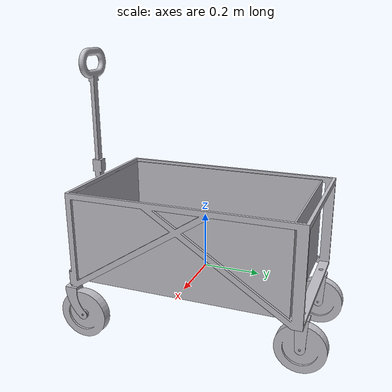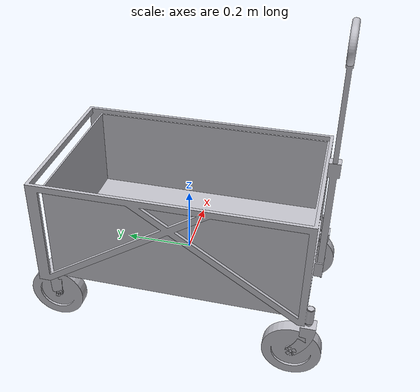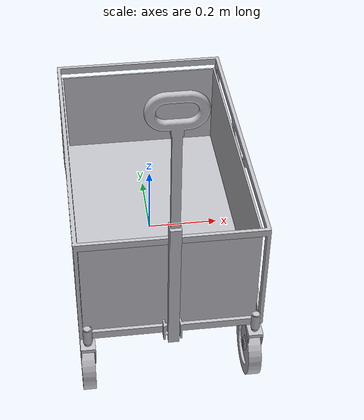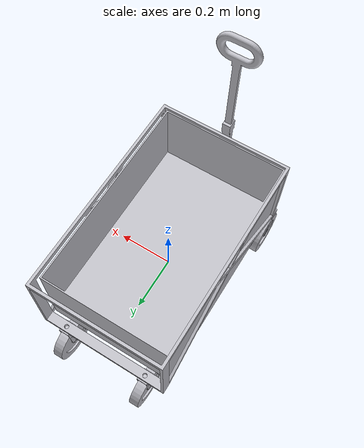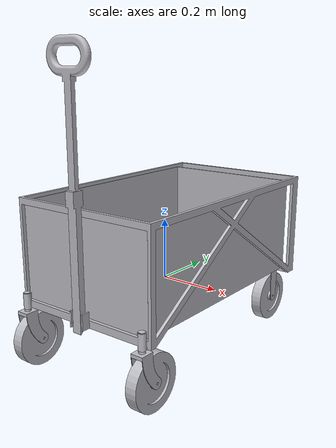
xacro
<?xml version="1.0"?>
<robot name="waterloo_steel" xmlns:xacro="http://www.ros.org/wiki/xacro">

  <!-- Imported elements -->

  <!-- First we import all posible elements defined in the urdf.xacro files. All these elements are defined as macro:xacros -->

  <!-- Import wagon elements -->
  <xacro:include filename="$(find waterloo_steel_description)/urdf/wagon/wagon_V2.urdf.xacro" />

  <xacro:property name="PI"                   value="3.1415926535897931"/>

  <!-- Wheel parameters -->
  <xacro:property name="wheel_radius"         value="0.127" /> <!-- omin-wheel -->
  <!-- Front Left Swivel -->
  <xacro:property name="wheel_offset_left_front_x"       value="0.242" />    <!-- x,y,z in translation from base_link to the center of the wheel -->
  <!-- Front Right Swivel -->
  <xacro:property name="wheel_offset_right_front_x"      value="-0.214" />
  <!-- Rear Left Fixed -->
  <xacro:property name="wheel_offset_left_rear_x"       value="0.197" />
  <!-- Rear Right Fixed -->
  <xacro:property name="wheel_offset_right_rear_x"      value="-0.133" />
  <!-- Front Swivel -->
  <xacro:property name="wheel_offset_front_y"       value="-0.407" />
  <xacro:property name="wheel_offset_front_z"       value="0.02" />
  <!-- Rear Fixed -->
  <xacro:property name="wheel_offset_rear_y"       value="0.396" />
  <xacro:property name="wheel_offset_rear_z"       value="-0.142" />

  <xacro:arg name="prefix"                 default="waterloo_steel_"/>

  <!-- Define wagon -->
  <xacro:macro name="wagon" params="prefix">

    <!-- Here we create the robot elements using the xacro:macros imported at the beggining of this file -->

    <!-- Wagon Base -->
    <xacro:wagon_base_link prefix="$(arg prefix)"/>

    <!-- Front Swivel Left Wheel -->
    <xacro:wagon_swivel_wheel_mount prefix="$(arg prefix)_front_left"
                                    parent="$(arg prefix)_base_link"
                                    child="$(arg prefix)_front_left_wheel"
                                    reflect="true">
        <origin xyz="${wheel_offset_left_front_x} ${wheel_offset_front_y} ${wheel_offset_front_z}" rpy="0 0 0"/>
    </xacro:wagon_swivel_wheel_mount>
    <xacro:wagon_wheel_link prefix="$(arg prefix)_front_left"/>

    <!-- Front Swivel Right Wheel -->
    <xacro:wagon_swivel_wheel_mount prefix="$(arg prefix)_front_right"
                                    parent="$(arg prefix)_base_link"
                                    child="$(arg prefix)_front_right_wheel"
                                    reflect="false">
        <origin xyz="${wheel_offset_right_front_x} ${wheel_offset_front_y} ${wheel_offset_front_z}" rpy="0 0 0"/>
    </xacro:wagon_swivel_wheel_mount>
    <xacro:wagon_wheel_link prefix="$(arg prefix)_front_right"/>

    <!-- Rear Fixed Left Wheel -->
    <xacro:wagon_fixed_wheel_mount prefix="$(arg prefix)_rear_left" parent="$(arg prefix)_base_link" child="$(arg prefix)_rear_left_wheel">
        <origin xyz="${wheel_offset_left_rear_x} ${wheel_offset_rear_y} ${wheel_offset_rear_z}" rpy="0 0 0"/>
    </xacro:wagon_fixed_wheel_mount>
    <xacro:wagon_wheel_link prefix="$(arg prefix)_rear_left"/>

    <!-- Rear Fixed Right Wheel -->
    <xacro:wagon_fixed_wheel_mount prefix="$(arg prefix)_rear_right" parent="$(arg prefix)_base_link" child="$(arg prefix)_rear_right_wheel">
        <origin xyz="${wheel_offset_right_rear_x} ${wheel_offset_rear_y} ${wheel_offset_rear_z}" rpy="0 0 0"/>
    </xacro:wagon_fixed_wheel_mount>
    <xacro:wagon_wheel_link prefix="$(arg prefix)_rear_right"/>

    <!-- Handle -->
    <xacro:handle_link prefix="$(arg prefix)" parent="$(arg prefix)_base_link">
        <origin xyz="0.001 -0.407 -0.02" rpy="0 0 0"/>
    </xacro:handle_link>
  </xacro:macro>

  <xacro:wagon prefix="$(arg prefix)"/>
</robot>

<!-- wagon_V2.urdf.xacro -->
<robot name="wagon" xmlns:xacro="http://www.ros.org/wiki/xacro">

<xacro:property name="PI" value="3.1415926535897931"/>
<xacro:property name="body_color" value="Gazebo/Silver" />

<xacro:macro name="wagon_base_link" params="prefix">
  <!-- Root link to Base link -->
  <joint name="${prefix}_root_to_base" type="fixed">
    <origin xyz="0 0 0" rpy="0 0 0"/>
    <parent link="${prefix}_root_link"/>
    <child link="${prefix}_base_link"/>
  </joint>
  <!-- Base link to pocket -->
  <joint name="${prefix}_base_to_pocket" type="fixed">
    <origin xyz="0.01 -0.009 -0.012" rpy="0 0 0"/>
    <parent link="${prefix}_base_link"/>
    <child link="${prefix}_pocket"/>
  </joint>
  <!-- Base link to imu -->
  <joint name="${prefix}_base_to_imu" type="fixed">
    <origin xyz="0 0 0" rpy="0 0 0"/>
    <parent link="${prefix}_base_link"/>
    <child link="${prefix}_imu_link"/>
  </joint>

  <link name="${prefix}_root_link">
    <visual>
      <origin xyz="0 0 0" rpy="0 0 0"/>
      <geometry>
        <box size="0.01 0.01 0.01"/>
      </geometry>
      <material name="silver"/>
    </visual>
  </link>

  <link name="${prefix}_base_link">
    <inertial>
      <origin xyz="0 0 0" rpy="0 0 0"/>
      <mass value="0.3"/>
      <inertia ixx="0.04" iyy="0.05" izz="0.02" ixy="0.0" iyz="0" ixz="0.0"/>
    </inertial>
    <visual>
      <origin xyz="0 0 0" rpy="0 0 0"/>
      <geometry>
        <mesh filename="package://waterloo_steel_description/meshes/meshes_wagon/wagon_base_link.stl" scale="1 1 1"/>
      </geometry>
      <material name="silver"/>
    </visual>
    <collision>
      <origin xyz="0 0 0" rpy="0 0 0"/>
      <geometry>
        <mesh filename="package://waterloo_steel_description/meshes/meshes_wagon/wagon_base_link.stl" scale="1 1 1"/>
      </geometry>
    </collision>
  </link>

  <link name="${prefix}_pocket">
    <inertial>
      <origin xyz="0 0 0" rpy="0 0 0"/>
      <mass value="0.9"/>
      <inertia ixx="0.05" iyy="0.06" izz="0.02" ixy="0.0" iyz="0.0" ixz="0.0"/>
    </inertial>
    <visual>
      <origin xyz="0 0 0" rpy="0 0 0"/>
      <geometry>
        <mesh filename="package://waterloo_steel_description/meshes/meshes_wagon/wagon_pocket.stl" scale="1 1 1"/>
      </geometry>
      <material name="silver"/>
    </visual>
    <collision>
      <origin xyz="0 0 0" rpy="0 0 0"/>
      <geometry>
        <mesh filename="package://waterloo_steel_description/meshes/meshes_wagon/wagon_pocket.stl" scale="1 1 1"/>
      </geometry>
    </collision>
  </link>

  <link name="${prefix}_imu_link">
    <visual>
      <origin xyz="0 0 0" rpy="0 0 0"/>
      <geometry>
        <box size="0.01 0.01 0.01"/>
      </geometry>
      <material name="silver"/>
    </visual>
  </link>

  <gazebo reference="${prefix}_base_link">
    <material>${body_color}</material>
    <kp>1e15</kp>
    <kd>1e13</kd>
    <!-- https://answers.ros.org/question/400947/why-collision-is-not-working-for-ur5/ -->
    <selfCollide>true</selfCollide>
    <gravity>true</gravity>
  </gazebo>

  <gazebo reference="${prefix}_pocket">
    <material>${body_color}</material>
    <!-- https://answers.ros.org/question/400947/why-collision-is-not-working-for-ur5/ -->
    <selfCollide>false</selfCollide>
  </gazebo>

  <gazebo reference="${prefix}_imu_link">
    <!--https://classic.gazebosim.org/tutorials?tut=ros_gzplugins-->
    <gravity>true</gravity>
    <sensor name="imu_sensor" type="imu">
      <always_on>true</always_on>
      <update_rate>100</update_rate>
      <visualize>true</visualize>
      <topic>__default_topic__</topic>
      <plugin filename="libgazebo_ros_imu_sensor.so" name="imu_plugin">
        <topicName>imu</topicName>
        <bodyName>imu_link</bodyName>
        <updateRateHZ>100.0</updateRateHZ>
        <gaussianNoise>0.0</gaussianNoise>
        <xyzOffset>0 0 0</xyzOffset>
        <rpyOffset>0 0 0</rpyOffset>
        <frameName>imu_link</frameName>
        <initialOrientationAsReference>false</initialOrientationAsReference>
      </plugin>
      <pose>0 0 0 0 0 0</pose>
    </sensor>
  </gazebo>
</xacro:macro>

<xacro:macro name="wagon_swivel_wheel_mount" params="prefix parent child reflect *origin">
  <!-- Wagon Base to swivel mount -->
  <joint name="${prefix}_swivel_joint" type="continuous">
    <xacro:insert_block name="origin" />
    <parent link="${parent}"/>
    <child link="${prefix}_wheel_swivel_mount"/>
    <axis xyz="0 0 1" rpy="0 0 0" />
    <limit effort="100" velocity="100"/>
    <joint_properties damping="0.1" friction="0.0"/>
  </joint>
  <!-- Swivel mount to wheel -->
  <joint name="${prefix}_swivel_wheel" type="continuous">
    <xacro:wagon_swivel_reflect reflect="${reflect}"/>
    <parent link="${prefix}_wheel_swivel_mount"/>
    <child link="${child}"/>
    <dynamics damping="0.1000"/>
    <dynamics friction="0.0000"/>
    <axis xyz="1.0 0.0 0.0"/>
  </joint>

  <link name="${prefix}_wheel_swivel_mount">
    <inertial>
      <xacro:wagon_swivel_reflect reflect="${reflect}"/>
      <mass value="0.1"/>
      <inertia ixx="0.000873" iyy="0.00017" izz="0.00085" ixy="0" iyz="0" ixz="0.0"/>
    </inertial>
    <visual>
      <xacro:wagon_swivel_reflect reflect="${reflect}"/>
      <geometry>
        <mesh filename="package://waterloo_steel_description/meshes/meshes_wagon/wagon_swivel_mount.stl" scale="1 1 1"/>
      </geometry>
      <material name="silver"/>
    </visual>
    <collision>
      <xacro:wagon_swivel_reflect reflect="${reflect}"/>
      <geometry>
        <mesh filename="package://waterloo_steel_description/meshes/meshes_wagon/wagon_swivel_mount.stl" scale="1 1 1"/>
      </geometry>
    </collision>
  </link>

  <gazebo reference="${prefix}_wheel_swivel_mount">
    <material>${body_color}</material>
    <!-- https://answers.ros.org/question/400947/why-collision-is-not-working-for-ur5/ -->
    <selfCollide>false</selfCollide>
  </gazebo>

</xacro:macro>

<xacro:macro name="wagon_swivel_reflect" params="reflect">
  <xacro:if value="${reflect}">
    <origin xyz="0.017 0.04 -0.162" rpy="0 0 0"/>
  </xacro:if>
  <xacro:unless value="${reflect}">
    <origin xyz="0.017 0.04 -0.162" rpy="0 0 0"/>
  </xacro:unless>
</xacro:macro>

<xacro:macro name="wagon_fixed_wheel_mount" params="prefix parent child *origin">
  <!-- Wagon Base to fixed mount -->
  <joint name="${prefix}_fixed" type="fixed">
    <xacro:insert_block name="origin" />
    <parent link="${parent}"/>
    <child link="${prefix}_wheel_fixed_mount"/>
  </joint>
  <!-- Fixed mount to wheel -->
  <joint name="${prefix}_fixed_wheel" type="continuous">
    <origin xyz="0 0 0" rpy="0 0 0"/>
    <parent link="${prefix}_wheel_fixed_mount"/>
    <child link="${child}"/>
    <dynamics damping="0.1000"/>
    <dynamics friction="0.0000"/>
    <axis xyz="1.0 0.0 0.0"/>
  </joint>

  <link name="${prefix}_wheel_fixed_mount">
    <inertial>
      <origin xyz="0 0 0" rpy="0 0 0"/>
      <mass value="0.1"/>
      <inertia ixx="0.000873" iyy="0.00017" izz="0.00085" ixy="0" iyz="0" ixz="0.0"/>
    </inertial>
    <visual>
      <origin xyz="0 0 0" rpy="0 0 0"/>
      <geometry>
        <mesh filename="package://waterloo_steel_description/meshes/meshes_wagon/wagon_fixed_mount.stl" scale="1 1 1"/>
      </geometry>
      <material name="silver"/>
    </visual>
    <collision>
      <origin xyz="0 0 0" rpy="0 0 0"/>
      <geometry>
        <mesh filename="package://waterloo_steel_description/meshes/meshes_wagon/wagon_fixed_mount.stl" scale="1 1 1"/>
      </geometry>
    </collision>
  </link>

  <gazebo reference="${prefix}_wheel_fixed_mount">
    <material>${body_color}</material>
    <!-- https://answers.ros.org/question/400947/why-collision-is-not-working-for-ur5/ -->
    <selfCollide>false</selfCollide>
  </gazebo>
</xacro:macro>

<xacro:macro name="wagon_wheel_link" params="prefix">
  <link name="${prefix}_wheel">
    <inertial>
      <origin xyz="0 0 0" rpy="0 0 0"/>
      <mass value="0.736"/>
      <inertia ixx="0.321" iyy="0.264" izz="0.134" ixy="-0.06" iyz="-0.145" ixz="-0.093"/>
    </inertial>
    <visual>
      <origin xyz="0 0 0" rpy="0 0 0"/>
      <geometry>
        <mesh filename="package://waterloo_steel_description/meshes/meshes_wagon/wagon_wheel.stl" scale="1 1 1"/>
      </geometry>
      <material name="silver"/>
    </visual>
    <collision>
      <origin xyz="0 0 0" rpy="0 0 0"/>
      <geometry>
        <mesh filename="package://waterloo_steel_description/meshes/meshes_wagon/wagon_wheel.stl" scale="1 1 1"/>
      </geometry>
    </collision>
  </link>

  <gazebo reference="${prefix}_wheel">
    <material>${body_color}</material>
    <kp>1e15</kp>
    <kd>1e13</kd>
    <mu1>0.2</mu1>
    <mu2>0.2</mu2>
    <!-- https://answers.ros.org/question/400947/why-collision-is-not-working-for-ur5/ -->
    <selfCollide>false</selfCollide>
  </gazebo>
</xacro:macro>

<xacro:macro name="handle_link" params="prefix parent *origin">
  <!-- Base to handle 1 -->
  <joint name="${prefix}_base_to_handle_1_joint" type="revolute">
    <xacro:insert_block name="origin" />
    <parent link="${parent}"/>
    <child link="${prefix}_handle_1"/>
    <axis xyz="1 0 0" rpy="0 0 0" />
    <limit upper="0.01" lower="-0.01"  effort="100" velocity="100"/>
    <joint_properties damping="0.1" friction="0.0"/>
  </joint>
  <!-- Handle 1 to handle 2 -->
  <joint name="handle_1_to_handle_2_joint" type="prismatic">
    <origin xyz="0 0 0" rpy="0 0 0"/>
    <parent link="${prefix}_handle_1"/>
    <child link="${prefix}_handle_2"/>
    <axis xyz="0 0 1" rpy="0 0 0" />
    <limit upper="0" lower="-0.28"  effort="100" velocity="100"/>
    <joint_properties damping="0.1" friction="0.0"/>
  </joint>

  <!-- Handle 1 -->
  <link name="${prefix}_handle_1">
    <inertial>
      <origin xyz="0 0 0" rpy="0 0 0"/>
      <mass value="0.147"/>
      <inertia ixx="0.035" iyy="0.011" izz="0.024" ixy="0.0" iyz="-0.014" ixz="0.0"/>
    </inertial>
    <visual>
      <origin xyz="0 0 0" rpy="0 0 0"/>
      <geometry>
        <mesh filename="package://waterloo_steel_description/meshes/meshes_wagon/wagon_handle_base_hinge.stl" scale="1 1 1"/>
      </geometry>
      <material name="silver"/>
    </visual>
    <collision>
      <origin xyz="0 0 0" rpy="0 0 0"/>
      <geometry>
        <mesh filename="package://waterloo_steel_description/meshes/meshes_wagon/wagon_handle_base_hinge.stl" scale="1 1 1"/>
      </geometry>
    </collision>
  </link>

  <!-- Handle 2 -->
  <link name="${prefix}_handle_2">
    <inertial>
      <origin xyz="0 0 0" rpy="0 0 0"/>
      <mass value="0.281"/>
      <inertia ixx="0.063" iyy="0.017" izz="0.046" ixy="0.0" iyz="0.025" ixz="0.0"/>
    </inertial>
    <visual>
      <origin xyz="0 0 0" rpy="0 0 0"/>
      <geometry>
        <mesh filename="package://waterloo_steel_description/meshes/meshes_wagon/wagon_top_handle.stl" scale="1 1 1"/>
      </geometry>
      <material name="silver"/>
    </visual>
    <collision>
      <origin xyz="0 0 0" rpy="0 0 0"/>
      <geometry>
        <mesh filename="package://waterloo_steel_description/meshes/meshes_wagon/wagon_top_handle.stl" scale="1 1 1"/>
      </geometry>
    </collision>
  </link>

  <gazebo reference="${prefix}_handle_1">
    <material>${body_color}</material>
    <kp>1e15</kp>
    <kd>1e13</kd>
    <selfCollide>true</selfCollide>
  </gazebo>

  <gazebo reference="${prefix}_handle_2">
    <material>${body_color}</material>
    <kp>1e15</kp>
    <kd>1e13</kd>
    <selfCollide>false</selfCollide>
  </gazebo>
</xacro:macro>

</robot>
